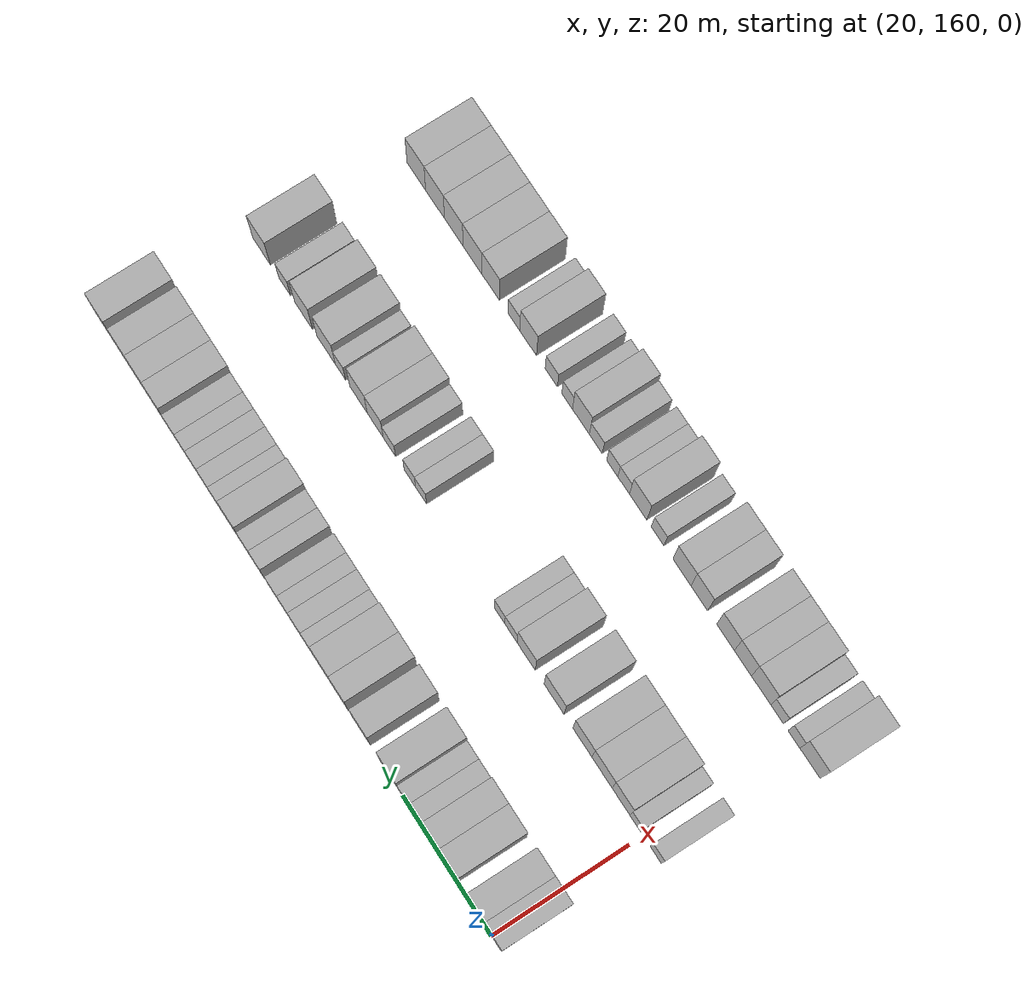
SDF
<sdf version="1.6">
 <world name="default">
  <model name="building_92">
   <static>1</static>
   <pose>25.0000 159.6972 0 0.000000 0.000000 0.000000</pose>
   <link name="link">
    <pose>0 0 4.50 0 0 0</pose>
    <collision name="collision"><geometry><box><size>10.0000 3.8400 9.0000</size></box></geometry></collision>
    <visual name="visual">
     <cast_shadows>0</cast_shadows>
     <geometry><box><size>10.0000 3.8400 9.0000</size></box></geometry>
     <material>
      <script>
       <uri>model://HANNAS_wall/materials/scripts</uri>
       <uri>model://HANNAS_wall/materials/textures</uri>
       <name>vrc/HANNAS_wall</name>
      </script>
     </material>
    </visual>
   </link>
  </model>
  <model name="building_93">
   <static>1</static>
   <pose>25.0000 163.6050 0 0.000000 0.000000 0.000000</pose>
   <link name="link">
    <pose>0 0 4.50 0 0 0</pose>
    <collision name="collision"><geometry><box><size>10.0000 3.9756 9.0000</size></box></geometry></collision>
    <visual name="visual">
     <cast_shadows>0</cast_shadows>
     <geometry><box><size>10.0000 3.9756 9.0000</size></box></geometry>
     <material>
      <script>
       <uri>model://HANNAS_wall/materials/scripts</uri>
       <uri>model://HANNAS_wall/materials/textures</uri>
       <name>vrc/HANNAS_wall</name>
      </script>
     </material>
    </visual>
   </link>
  </model>
  <model name="building_94">
   <static>1</static>
   <pose>25.0000 169.6519 0 0.000000 0.000000 0.000000</pose>
   <link name="link">
    <pose>0 0 4.50 0 0 0</pose>
    <collision name="collision"><geometry><box><size>10.0000 4.1182 9.0000</size></box></geometry></collision>
    <visual name="visual">
     <cast_shadows>0</cast_shadows>
     <geometry><box><size>10.0000 4.1182 9.0000</size></box></geometry>
     <material>
      <script>
       <uri>model://HANNAS_wall/materials/scripts</uri>
       <uri>model://HANNAS_wall/materials/textures</uri>
       <name>vrc/HANNAS_wall</name>
      </script>
     </material>
    </visual>
   </link>
  </model>
  <model name="building_95">
   <static>1</static>
   <pose>25.0000 173.5696 0 0.000000 0.000000 0.000000</pose>
   <link name="link">
    <pose>0 0 4.50 0 0 0</pose>
    <collision name="collision"><geometry><box><size>10.0000 3.7172 9.0000</size></box></geometry></collision>
    <visual name="visual">
     <cast_shadows>0</cast_shadows>
     <geometry><box><size>10.0000 3.7172 9.0000</size></box></geometry>
     <material>
      <script>
       <uri>model://HANNAS_wall/materials/scripts</uri>
       <uri>model://HANNAS_wall/materials/textures</uri>
       <name>vrc/HANNAS_wall</name>
      </script>
     </material>
    </visual>
   </link>
  </model>
  <model name="building_96">
   <static>1</static>
   <pose>25.0000 176.8529 0 0.000000 0.000000 0.000000</pose>
   <link name="link">
    <pose>0 0 3.00 0 0 0</pose>
    <collision name="collision"><geometry><box><size>10.0000 2.8495 6.0000</size></box></geometry></collision>
    <visual name="visual">
     <cast_shadows>0</cast_shadows>
     <geometry><box><size>10.0000 2.8495 6.0000</size></box></geometry>
     <material>
      <script>
       <uri>model://HANNAS_wall/materials/scripts</uri>
       <uri>model://HANNAS_wall/materials/textures</uri>
       <name>vrc/HANNAS_wall</name>
      </script>
     </material>
    </visual>
   </link>
  </model>
  <model name="building_97">
   <static>1</static>
   <pose>25.0000 179.6041 0 0.000000 0.000000 0.000000</pose>
   <link name="link">
    <pose>0 0 3.00 0 0 0</pose>
    <collision name="collision"><geometry><box><size>10.0000 2.6528 6.0000</size></box></geometry></collision>
    <visual name="visual">
     <cast_shadows>0</cast_shadows>
     <geometry><box><size>10.0000 2.6528 6.0000</size></box></geometry>
     <material>
      <script>
       <uri>model://HANNAS_wall/materials/scripts</uri>
       <uri>model://HANNAS_wall/materials/textures</uri>
       <name>vrc/HANNAS_wall</name>
      </script>
     </material>
    </visual>
   </link>
  </model>
  <model name="building_98">
   <static>1</static>
   <pose>25.0000 183.1309 0 0.000000 0.000000 0.000000</pose>
   <link name="link">
    <pose>0 0 4.50 0 0 0</pose>
    <collision name="collision"><geometry><box><size>10.0000 4.4007 9.0000</size></box></geometry></collision>
    <visual name="visual">
     <cast_shadows>0</cast_shadows>
     <geometry><box><size>10.0000 4.4007 9.0000</size></box></geometry>
     <material>
      <script>
       <uri>model://HANNAS_wall/materials/scripts</uri>
       <uri>model://HANNAS_wall/materials/textures</uri>
       <name>vrc/HANNAS_wall</name>
      </script>
     </material>
    </visual>
   </link>
  </model>
  <model name="building_99">
   <static>1</static>
   <pose>25.0000 189.3693 0 0.000000 0.000000 0.000000</pose>
   <link name="link">
    <pose>0 0 4.50 0 0 0</pose>
    <collision name="collision"><geometry><box><size>10.0000 4.0761 9.0000</size></box></geometry></collision>
    <visual name="visual">
     <cast_shadows>0</cast_shadows>
     <geometry><box><size>10.0000 4.0761 9.0000</size></box></geometry>
     <material>
      <script>
       <uri>model://HANNAS_wall/materials/scripts</uri>
       <uri>model://HANNAS_wall/materials/textures</uri>
       <name>vrc/HANNAS_wall</name>
      </script>
     </material>
    </visual>
   </link>
  </model>
  <model name="building_100">
   <static>1</static>
   <pose>25.0000 194.2313 0 0.000000 0.000000 0.000000</pose>
   <link name="link">
    <pose>0 0 4.50 0 0 0</pose>
    <collision name="collision"><geometry><box><size>10.0000 3.6480 9.0000</size></box></geometry></collision>
    <visual name="visual">
     <cast_shadows>0</cast_shadows>
     <geometry><box><size>10.0000 3.6480 9.0000</size></box></geometry>
     <material>
      <script>
       <uri>model://HANNAS_wall/materials/scripts</uri>
       <uri>model://HANNAS_wall/materials/textures</uri>
       <name>vrc/HANNAS_wall</name>
      </script>
     </material>
    </visual>
   </link>
  </model>
  <model name="building_101">
   <static>1</static>
   <pose>25.0000 198.1783 0 0.000000 0.000000 0.000000</pose>
   <link name="link">
    <pose>0 0 4.50 0 0 0</pose>
    <collision name="collision"><geometry><box><size>10.0000 4.2460 9.0000</size></box></geometry></collision>
    <visual name="visual">
     <cast_shadows>0</cast_shadows>
     <geometry><box><size>10.0000 4.2460 9.0000</size></box></geometry>
     <material>
      <script>
       <uri>model://HANNAS_wall/materials/scripts</uri>
       <uri>model://HANNAS_wall/materials/textures</uri>
       <name>vrc/HANNAS_wall</name>
      </script>
     </material>
    </visual>
   </link>
  </model>
  <model name="building_102">
   <static>1</static>
   <pose>25.0000 201.5499 0 0.000000 0.000000 0.000000</pose>
   <link name="link">
    <pose>0 0 3.00 0 0 0</pose>
    <collision name="collision"><geometry><box><size>10.0000 2.4973 6.0000</size></box></geometry></collision>
    <visual name="visual">
     <cast_shadows>0</cast_shadows>
     <geometry><box><size>10.0000 2.4973 6.0000</size></box></geometry>
     <material>
      <script>
       <uri>model://HANNAS_wall/materials/scripts</uri>
       <uri>model://HANNAS_wall/materials/textures</uri>
       <name>vrc/HANNAS_wall</name>
      </script>
     </material>
    </visual>
   </link>
  </model>
  <model name="building_103">
   <static>1</static>
   <pose>25.0000 204.2657 0 0.000000 0.000000 0.000000</pose>
   <link name="link">
    <pose>0 0 3.00 0 0 0</pose>
    <collision name="collision"><geometry><box><size>10.0000 2.9342 6.0000</size></box></geometry></collision>
    <visual name="visual">
     <cast_shadows>0</cast_shadows>
     <geometry><box><size>10.0000 2.9342 6.0000</size></box></geometry>
     <material>
      <script>
       <uri>model://HANNAS_wall/materials/scripts</uri>
       <uri>model://HANNAS_wall/materials/textures</uri>
       <name>vrc/HANNAS_wall</name>
      </script>
     </material>
    </visual>
   </link>
  </model>
  <model name="building_104">
   <static>1</static>
   <pose>25.0000 206.9601 0 0.000000 0.000000 0.000000</pose>
   <link name="link">
    <pose>0 0 3.00 0 0 0</pose>
    <collision name="collision"><geometry><box><size>10.0000 2.4547 6.0000</size></box></geometry></collision>
    <visual name="visual">
     <cast_shadows>0</cast_shadows>
     <geometry><box><size>10.0000 2.4547 6.0000</size></box></geometry>
     <material>
      <script>
       <uri>model://HANNAS_wall/materials/scripts</uri>
       <uri>model://HANNAS_wall/materials/textures</uri>
       <name>vrc/HANNAS_wall</name>
      </script>
     </material>
    </visual>
   </link>
  </model>
  <model name="building_105">
   <static>1</static>
   <pose>25.0000 209.6056 0 0.000000 0.000000 0.000000</pose>
   <link name="link">
    <pose>0 0 3.00 0 0 0</pose>
    <collision name="collision"><geometry><box><size>10.0000 2.8363 6.0000</size></box></geometry></collision>
    <visual name="visual">
     <cast_shadows>0</cast_shadows>
     <geometry><box><size>10.0000 2.8363 6.0000</size></box></geometry>
     <material>
      <script>
       <uri>model://HANNAS_wall/materials/scripts</uri>
       <uri>model://HANNAS_wall/materials/textures</uri>
       <name>vrc/HANNAS_wall</name>
      </script>
     </material>
    </visual>
   </link>
  </model>
  <model name="building_106">
   <static>1</static>
   <pose>25.0000 213.4160 0 0.000000 0.000000 0.000000</pose>
   <link name="link">
    <pose>0 0 3.00 0 0 0</pose>
    <collision name="collision"><geometry><box><size>10.0000 2.7846 6.0000</size></box></geometry></collision>
    <visual name="visual">
     <cast_shadows>0</cast_shadows>
     <geometry><box><size>10.0000 2.7846 6.0000</size></box></geometry>
     <material>
      <script>
       <uri>model://HANNAS_wall/materials/scripts</uri>
       <uri>model://HANNAS_wall/materials/textures</uri>
       <name>vrc/HANNAS_wall</name>
      </script>
     </material>
    </visual>
   </link>
  </model>
  <model name="building_107">
   <static>1</static>
   <pose>25.0000 216.1859 0 0.000000 0.000000 0.000000</pose>
   <link name="link">
    <pose>0 0 3.00 0 0 0</pose>
    <collision name="collision"><geometry><box><size>10.0000 2.7551 6.0000</size></box></geometry></collision>
    <visual name="visual">
     <cast_shadows>0</cast_shadows>
     <geometry><box><size>10.0000 2.7551 6.0000</size></box></geometry>
     <material>
      <script>
       <uri>model://HANNAS_wall/materials/scripts</uri>
       <uri>model://HANNAS_wall/materials/textures</uri>
       <name>vrc/HANNAS_wall</name>
      </script>
     </material>
    </visual>
   </link>
  </model>
  <model name="building_108">
   <static>1</static>
   <pose>25.0000 219.4975 0 0.000000 0.000000 0.000000</pose>
   <link name="link">
    <pose>0 0 4.50 0 0 0</pose>
    <collision name="collision"><geometry><box><size>10.0000 3.8681 9.0000</size></box></geometry></collision>
    <visual name="visual">
     <cast_shadows>0</cast_shadows>
     <geometry><box><size>10.0000 3.8681 9.0000</size></box></geometry>
     <material>
      <script>
       <uri>model://HANNAS_wall/materials/scripts</uri>
       <uri>model://HANNAS_wall/materials/textures</uri>
       <name>vrc/HANNAS_wall</name>
      </script>
     </material>
    </visual>
   </link>
  </model>
  <model name="building_109">
   <static>1</static>
   <pose>25.0000 222.8464 0 0.000000 0.000000 0.000000</pose>
   <link name="link">
    <pose>0 0 3.00 0 0 0</pose>
    <collision name="collision"><geometry><box><size>10.0000 2.8297 6.0000</size></box></geometry></collision>
    <visual name="visual">
     <cast_shadows>0</cast_shadows>
     <geometry><box><size>10.0000 2.8297 6.0000</size></box></geometry>
     <material>
      <script>
       <uri>model://HANNAS_wall/materials/scripts</uri>
       <uri>model://HANNAS_wall/materials/textures</uri>
       <name>vrc/HANNAS_wall</name>
      </script>
     </material>
    </visual>
   </link>
  </model>
  <model name="building_110">
   <static>1</static>
   <pose>25.0000 225.6006 0 0.000000 0.000000 0.000000</pose>
   <link name="link">
    <pose>0 0 3.00 0 0 0</pose>
    <collision name="collision"><geometry><box><size>10.0000 2.6788 6.0000</size></box></geometry></collision>
    <visual name="visual">
     <cast_shadows>0</cast_shadows>
     <geometry><box><size>10.0000 2.6788 6.0000</size></box></geometry>
     <material>
      <script>
       <uri>model://HANNAS_wall/materials/scripts</uri>
       <uri>model://HANNAS_wall/materials/textures</uri>
       <name>vrc/HANNAS_wall</name>
      </script>
     </material>
    </visual>
   </link>
  </model>
  <model name="building_111">
   <static>1</static>
   <pose>25.0000 228.2930 0 0.000000 0.000000 0.000000</pose>
   <link name="link">
    <pose>0 0 3.00 0 0 0</pose>
    <collision name="collision"><geometry><box><size>10.0000 2.7061 6.0000</size></box></geometry></collision>
    <visual name="visual">
     <cast_shadows>0</cast_shadows>
     <geometry><box><size>10.0000 2.7061 6.0000</size></box></geometry>
     <material>
      <script>
       <uri>model://HANNAS_wall/materials/scripts</uri>
       <uri>model://HANNAS_wall/materials/textures</uri>
       <name>vrc/HANNAS_wall</name>
      </script>
     </material>
    </visual>
   </link>
  </model>
  <model name="building_112">
   <static>1</static>
   <pose>25.0000 230.8920 0 0.000000 0.000000 0.000000</pose>
   <link name="link">
    <pose>0 0 3.00 0 0 0</pose>
    <collision name="collision"><geometry><box><size>10.0000 2.4918 6.0000</size></box></geometry></collision>
    <visual name="visual">
     <cast_shadows>0</cast_shadows>
     <geometry><box><size>10.0000 2.4918 6.0000</size></box></geometry>
     <material>
      <script>
       <uri>model://HANNAS_wall/materials/scripts</uri>
       <uri>model://HANNAS_wall/materials/textures</uri>
       <name>vrc/HANNAS_wall</name>
      </script>
     </material>
    </visual>
   </link>
  </model>
  <model name="building_113">
   <static>1</static>
   <pose>25.0000 233.6374 0 0.000000 0.000000 0.000000</pose>
   <link name="link">
    <pose>0 0 3.00 0 0 0</pose>
    <collision name="collision"><geometry><box><size>10.0000 2.9990 6.0000</size></box></geometry></collision>
    <visual name="visual">
     <cast_shadows>0</cast_shadows>
     <geometry><box><size>10.0000 2.9990 6.0000</size></box></geometry>
     <material>
      <script>
       <uri>model://HANNAS_wall/materials/scripts</uri>
       <uri>model://HANNAS_wall/materials/textures</uri>
       <name>vrc/HANNAS_wall</name>
      </script>
     </material>
    </visual>
   </link>
  </model>
  <model name="building_114">
   <static>1</static>
   <pose>25.0000 237.1135 0 0.000000 0.000000 0.000000</pose>
   <link name="link">
    <pose>0 0 4.50 0 0 0</pose>
    <collision name="collision"><geometry><box><size>10.0000 3.9532 9.0000</size></box></geometry></collision>
    <visual name="visual">
     <cast_shadows>0</cast_shadows>
     <geometry><box><size>10.0000 3.9532 9.0000</size></box></geometry>
     <material>
      <script>
       <uri>model://HANNAS_wall/materials/scripts</uri>
       <uri>model://HANNAS_wall/materials/textures</uri>
       <name>vrc/HANNAS_wall</name>
      </script>
     </material>
    </visual>
   </link>
  </model>
  <model name="building_115">
   <static>1</static>
   <pose>25.0000 241.1163 0 0.000000 0.000000 0.000000</pose>
   <link name="link">
    <pose>0 0 4.50 0 0 0</pose>
    <collision name="collision"><geometry><box><size>10.0000 4.0525 9.0000</size></box></geometry></collision>
    <visual name="visual">
     <cast_shadows>0</cast_shadows>
     <geometry><box><size>10.0000 4.0525 9.0000</size></box></geometry>
     <material>
      <script>
       <uri>model://HANNAS_wall/materials/scripts</uri>
       <uri>model://HANNAS_wall/materials/textures</uri>
       <name>vrc/HANNAS_wall</name>
      </script>
     </material>
    </visual>
   </link>
  </model>
  <model name="building_116">
   <static>1</static>
   <pose>25.0000 245.1663 0 0.000000 0.000000 0.000000</pose>
   <link name="link">
    <pose>0 0 4.50 0 0 0</pose>
    <collision name="collision"><geometry><box><size>10.0000 4.0475 9.0000</size></box></geometry></collision>
    <visual name="visual">
     <cast_shadows>0</cast_shadows>
     <geometry><box><size>10.0000 4.0475 9.0000</size></box></geometry>
     <material>
      <script>
       <uri>model://HANNAS_wall/materials/scripts</uri>
       <uri>model://HANNAS_wall/materials/textures</uri>
       <name>vrc/HANNAS_wall</name>
      </script>
     </material>
    </visual>
   </link>
  </model>
  <model name="building_117">
   <static>1</static>
   <pose>25.0000 250.3710 0 0.000000 0.000000 0.000000</pose>
   <link name="link">
    <pose>0 0 4.50 0 0 0</pose>
    <collision name="collision"><geometry><box><size>10.0000 4.3619 9.0000</size></box></geometry></collision>
    <visual name="visual">
     <cast_shadows>0</cast_shadows>
     <geometry><box><size>10.0000 4.3619 9.0000</size></box></geometry>
     <material>
      <script>
       <uri>model://HANNAS_wall/materials/scripts</uri>
       <uri>model://HANNAS_wall/materials/textures</uri>
       <name>vrc/HANNAS_wall</name>
      </script>
     </material>
    </visual>
   </link>
  </model>
  <model name="building_206">
   <static>1</static>
   <pose>47.0000 157.3305 0 0.000000 0.000000 0.000000</pose>
   <link name="link">
    <pose>0 0 3.00 0 0 0</pose>
    <collision name="collision"><geometry><box><size>10.0000 2.5042 6.0000</size></box></geometry></collision>
    <visual name="visual">
     <cast_shadows>0</cast_shadows>
     <geometry><box><size>10.0000 2.5042 6.0000</size></box></geometry>
     <material>
      <script>
       <uri>model://HANNAS_wall/materials/scripts</uri>
       <uri>model://HANNAS_wall/materials/textures</uri>
       <name>vrc/HANNAS_wall</name>
      </script>
     </material>
    </visual>
   </link>
  </model>
  <model name="building_207">
   <static>1</static>
   <pose>47.0000 161.7939 0 0.000000 0.000000 0.000000</pose>
   <link name="link">
    <pose>0 0 3.00 0 0 0</pose>
    <collision name="collision"><geometry><box><size>10.0000 2.4228 6.0000</size></box></geometry></collision>
    <visual name="visual">
     <cast_shadows>0</cast_shadows>
     <geometry><box><size>10.0000 2.4228 6.0000</size></box></geometry>
     <material>
      <script>
       <uri>model://HANNAS_wall/materials/scripts</uri>
       <uri>model://HANNAS_wall/materials/textures</uri>
       <name>vrc/HANNAS_wall</name>
      </script>
     </material>
    </visual>
   </link>
  </model>
  <model name="building_208">
   <static>1</static>
   <pose>47.0000 164.9672 0 0.000000 0.000000 0.000000</pose>
   <link name="link">
    <pose>0 0 4.50 0 0 0</pose>
    <collision name="collision"><geometry><box><size>10.0000 3.9237 9.0000</size></box></geometry></collision>
    <visual name="visual">
     <cast_shadows>0</cast_shadows>
     <geometry><box><size>10.0000 3.9237 9.0000</size></box></geometry>
     <material>
      <script>
       <uri>model://HANNAS_wall/materials/scripts</uri>
       <uri>model://HANNAS_wall/materials/textures</uri>
       <name>vrc/HANNAS_wall</name>
      </script>
     </material>
    </visual>
   </link>
  </model>
  <model name="building_209">
   <static>1</static>
   <pose>47.0000 169.1634 0 0.000000 0.000000 0.000000</pose>
   <link name="link">
    <pose>0 0 4.50 0 0 0</pose>
    <collision name="collision"><geometry><box><size>10.0000 4.4689 9.0000</size></box></geometry></collision>
    <visual name="visual">
     <cast_shadows>0</cast_shadows>
     <geometry><box><size>10.0000 4.4689 9.0000</size></box></geometry>
     <material>
      <script>
       <uri>model://HANNAS_wall/materials/scripts</uri>
       <uri>model://HANNAS_wall/materials/textures</uri>
       <name>vrc/HANNAS_wall</name>
      </script>
     </material>
    </visual>
   </link>
  </model>
  <model name="building_210">
   <static>1</static>
   <pose>47.0000 173.5225 0 0.000000 0.000000 0.000000</pose>
   <link name="link">
    <pose>0 0 4.50 0 0 0</pose>
    <collision name="collision"><geometry><box><size>10.0000 4.2493 9.0000</size></box></geometry></collision>
    <visual name="visual">
     <cast_shadows>0</cast_shadows>
     <geometry><box><size>10.0000 4.2493 9.0000</size></box></geometry>
     <material>
      <script>
       <uri>model://HANNAS_wall/materials/scripts</uri>
       <uri>model://HANNAS_wall/materials/textures</uri>
       <name>vrc/HANNAS_wall</name>
      </script>
     </material>
    </visual>
   </link>
  </model>
  <model name="building_211">
   <static>1</static>
   <pose>47.0000 179.8951 0 0.000000 0.000000 0.000000</pose>
   <link name="link">
    <pose>0 0 4.50 0 0 0</pose>
    <collision name="collision"><geometry><box><size>10.0000 4.4960 9.0000</size></box></geometry></collision>
    <visual name="visual">
     <cast_shadows>0</cast_shadows>
     <geometry><box><size>10.0000 4.4960 9.0000</size></box></geometry>
     <material>
      <script>
       <uri>model://HANNAS_wall/materials/scripts</uri>
       <uri>model://HANNAS_wall/materials/textures</uri>
       <name>vrc/HANNAS_wall</name>
      </script>
     </material>
    </visual>
   </link>
  </model>
  <model name="building_212">
   <static>1</static>
   <pose>47.0000 186.1924 0 0.000000 0.000000 0.000000</pose>
   <link name="link">
    <pose>0 0 4.50 0 0 0</pose>
    <collision name="collision"><geometry><box><size>10.0000 4.0985 9.0000</size></box></geometry></collision>
    <visual name="visual">
     <cast_shadows>0</cast_shadows>
     <geometry><box><size>10.0000 4.0985 9.0000</size></box></geometry>
     <material>
      <script>
       <uri>model://HANNAS_wall/materials/scripts</uri>
       <uri>model://HANNAS_wall/materials/textures</uri>
       <name>vrc/HANNAS_wall</name>
      </script>
     </material>
    </visual>
   </link>
  </model>
  <model name="building_213">
   <static>1</static>
   <pose>47.0000 189.6324 0 0.000000 0.000000 0.000000</pose>
   <link name="link">
    <pose>0 0 3.00 0 0 0</pose>
    <collision name="collision"><geometry><box><size>10.0000 2.7817 6.0000</size></box></geometry></collision>
    <visual name="visual">
     <cast_shadows>0</cast_shadows>
     <geometry><box><size>10.0000 2.7817 6.0000</size></box></geometry>
     <material>
      <script>
       <uri>model://HANNAS_wall/materials/scripts</uri>
       <uri>model://HANNAS_wall/materials/textures</uri>
       <name>vrc/HANNAS_wall</name>
      </script>
     </material>
    </visual>
   </link>
  </model>
  <model name="building_214">
   <static>1</static>
   <pose>47.0000 192.2493 0 0.000000 0.000000 0.000000</pose>
   <link name="link">
    <pose>0 0 3.00 0 0 0</pose>
    <collision name="collision"><geometry><box><size>10.0000 2.4520 6.0000</size></box></geometry></collision>
    <visual name="visual">
     <cast_shadows>0</cast_shadows>
     <geometry><box><size>10.0000 2.4520 6.0000</size></box></geometry>
     <material>
      <script>
       <uri>model://HANNAS_wall/materials/scripts</uri>
       <uri>model://HANNAS_wall/materials/textures</uri>
       <name>vrc/HANNAS_wall</name>
      </script>
     </material>
    </visual>
   </link>
  </model>
  <model name="building_215">
   <static>1</static>
   <pose>47.0000 210.3008 0 0.000000 0.000000 0.000000</pose>
   <link name="link">
    <pose>0 0 3.00 0 0 0</pose>
    <collision name="collision"><geometry><box><size>10.0000 2.5504 6.0000</size></box></geometry></collision>
    <visual name="visual">
     <cast_shadows>0</cast_shadows>
     <geometry><box><size>10.0000 2.5504 6.0000</size></box></geometry>
     <material>
      <script>
       <uri>model://HANNAS_wall/materials/scripts</uri>
       <uri>model://HANNAS_wall/materials/textures</uri>
       <name>vrc/HANNAS_wall</name>
      </script>
     </material>
    </visual>
   </link>
  </model>
  <model name="building_216">
   <static>1</static>
   <pose>47.0000 212.9019 0 0.000000 0.000000 0.000000</pose>
   <link name="link">
    <pose>0 0 3.00 0 0 0</pose>
    <collision name="collision"><geometry><box><size>10.0000 2.6519 6.0000</size></box></geometry></collision>
    <visual name="visual">
     <cast_shadows>0</cast_shadows>
     <geometry><box><size>10.0000 2.6519 6.0000</size></box></geometry>
     <material>
      <script>
       <uri>model://HANNAS_wall/materials/scripts</uri>
       <uri>model://HANNAS_wall/materials/textures</uri>
       <name>vrc/HANNAS_wall</name>
      </script>
     </material>
    </visual>
   </link>
  </model>
  <model name="building_217">
   <static>1</static>
   <pose>47.0000 217.6690 0 0.000000 0.000000 0.000000</pose>
   <link name="link">
    <pose>0 0 3.00 0 0 0</pose>
    <collision name="collision"><geometry><box><size>10.0000 2.8822 6.0000</size></box></geometry></collision>
    <visual name="visual">
     <cast_shadows>0</cast_shadows>
     <geometry><box><size>10.0000 2.8822 6.0000</size></box></geometry>
     <material>
      <script>
       <uri>model://HANNAS_wall/materials/scripts</uri>
       <uri>model://HANNAS_wall/materials/textures</uri>
       <name>vrc/HANNAS_wall</name>
      </script>
     </material>
    </visual>
   </link>
  </model>
  <model name="building_218">
   <static>1</static>
   <pose>47.0000 220.9915 0 0.000000 0.000000 0.000000</pose>
   <link name="link">
    <pose>0 0 4.50 0 0 0</pose>
    <collision name="collision"><geometry><box><size>10.0000 3.7628 9.0000</size></box></geometry></collision>
    <visual name="visual">
     <cast_shadows>0</cast_shadows>
     <geometry><box><size>10.0000 3.7628 9.0000</size></box></geometry>
     <material>
      <script>
       <uri>model://HANNAS_wall/materials/scripts</uri>
       <uri>model://HANNAS_wall/materials/textures</uri>
       <name>vrc/HANNAS_wall</name>
      </script>
     </material>
    </visual>
   </link>
  </model>
  <model name="building_219">
   <static>1</static>
   <pose>47.0000 224.9384 0 0.000000 0.000000 0.000000</pose>
   <link name="link">
    <pose>0 0 4.50 0 0 0</pose>
    <collision name="collision"><geometry><box><size>10.0000 4.1309 9.0000</size></box></geometry></collision>
    <visual name="visual">
     <cast_shadows>0</cast_shadows>
     <geometry><box><size>10.0000 4.1309 9.0000</size></box></geometry>
     <material>
      <script>
       <uri>model://HANNAS_wall/materials/scripts</uri>
       <uri>model://HANNAS_wall/materials/textures</uri>
       <name>vrc/HANNAS_wall</name>
      </script>
     </material>
    </visual>
   </link>
  </model>
  <model name="building_220">
   <static>1</static>
   <pose>47.0000 229.2308 0 0.000000 0.000000 0.000000</pose>
   <link name="link">
    <pose>0 0 3.00 0 0 0</pose>
    <collision name="collision"><geometry><box><size>10.0000 2.4540 6.0000</size></box></geometry></collision>
    <visual name="visual">
     <cast_shadows>0</cast_shadows>
     <geometry><box><size>10.0000 2.4540 6.0000</size></box></geometry>
     <material>
      <script>
       <uri>model://HANNAS_wall/materials/scripts</uri>
       <uri>model://HANNAS_wall/materials/textures</uri>
       <name>vrc/HANNAS_wall</name>
      </script>
     </material>
    </visual>
   </link>
  </model>
  <model name="building_221">
   <static>1</static>
   <pose>47.0000 232.6651 0 0.000000 0.000000 0.000000</pose>
   <link name="link">
    <pose>0 0 4.50 0 0 0</pose>
    <collision name="collision"><geometry><box><size>10.0000 4.4146 9.0000</size></box></geometry></collision>
    <visual name="visual">
     <cast_shadows>0</cast_shadows>
     <geometry><box><size>10.0000 4.4146 9.0000</size></box></geometry>
     <material>
      <script>
       <uri>model://HANNAS_wall/materials/scripts</uri>
       <uri>model://HANNAS_wall/materials/textures</uri>
       <name>vrc/HANNAS_wall</name>
      </script>
     </material>
    </visual>
   </link>
  </model>
  <model name="building_222">
   <static>1</static>
   <pose>47.0000 238.0241 0 0.000000 0.000000 0.000000</pose>
   <link name="link">
    <pose>0 0 4.50 0 0 0</pose>
    <collision name="collision"><geometry><box><size>10.0000 4.3033 9.0000</size></box></geometry></collision>
    <visual name="visual">
     <cast_shadows>0</cast_shadows>
     <geometry><box><size>10.0000 4.3033 9.0000</size></box></geometry>
     <material>
      <script>
       <uri>model://HANNAS_wall/materials/scripts</uri>
       <uri>model://HANNAS_wall/materials/textures</uri>
       <name>vrc/HANNAS_wall</name>
      </script>
     </material>
    </visual>
   </link>
  </model>
  <model name="building_223">
   <static>1</static>
   <pose>47.0000 242.6001 0 0.000000 0.000000 0.000000</pose>
   <link name="link">
    <pose>0 0 3.00 0 0 0</pose>
    <collision name="collision"><geometry><box><size>10.0000 2.8487 6.0000</size></box></geometry></collision>
    <visual name="visual">
     <cast_shadows>0</cast_shadows>
     <geometry><box><size>10.0000 2.8487 6.0000</size></box></geometry>
     <material>
      <script>
       <uri>model://HANNAS_wall/materials/scripts</uri>
       <uri>model://HANNAS_wall/materials/textures</uri>
       <name>vrc/HANNAS_wall</name>
      </script>
     </material>
    </visual>
   </link>
  </model>
  <model name="building_224">
   <static>1</static>
   <pose>47.0000 248.1379 0 0.000000 0.000000 0.000000</pose>
   <link name="link">
    <pose>0 0 4.50 0 0 0</pose>
    <collision name="collision"><geometry><box><size>10.0000 4.2270 9.0000</size></box></geometry></collision>
    <visual name="visual">
     <cast_shadows>0</cast_shadows>
     <geometry><box><size>10.0000 4.2270 9.0000</size></box></geometry>
     <material>
      <script>
       <uri>model://HANNAS_wall/materials/scripts</uri>
       <uri>model://HANNAS_wall/materials/textures</uri>
       <name>vrc/HANNAS_wall</name>
      </script>
     </material>
    </visual>
   </link>
  </model>
  <model name="building_316">
   <static>1</static>
   <pose>69.0000 156.3381 0 0.000000 0.000000 0.000000</pose>
   <link name="link">
    <pose>0 0 4.50 0 0 0</pose>
    <collision name="collision"><geometry><box><size>10.0000 4.3940 9.0000</size></box></geometry></collision>
    <visual name="visual">
     <cast_shadows>0</cast_shadows>
     <geometry><box><size>10.0000 4.3940 9.0000</size></box></geometry>
     <material>
      <script>
       <uri>model://HANNAS_wall/materials/scripts</uri>
       <uri>model://HANNAS_wall/materials/textures</uri>
       <name>vrc/HANNAS_wall</name>
      </script>
     </material>
    </visual>
   </link>
  </model>
  <model name="building_317">
   <static>1</static>
   <pose>69.0000 159.8183 0 0.000000 0.000000 0.000000</pose>
   <link name="link">
    <pose>0 0 3.00 0 0 0</pose>
    <collision name="collision"><geometry><box><size>10.0000 2.5664 6.0000</size></box></geometry></collision>
    <visual name="visual">
     <cast_shadows>0</cast_shadows>
     <geometry><box><size>10.0000 2.5664 6.0000</size></box></geometry>
     <material>
      <script>
       <uri>model://HANNAS_wall/materials/scripts</uri>
       <uri>model://HANNAS_wall/materials/textures</uri>
       <name>vrc/HANNAS_wall</name>
      </script>
     </material>
    </visual>
   </link>
  </model>
  <model name="building_318">
   <static>1</static>
   <pose>69.0000 163.4926 0 0.000000 0.000000 0.000000</pose>
   <link name="link">
    <pose>0 0 3.00 0 0 0</pose>
    <collision name="collision"><geometry><box><size>10.0000 2.7822 6.0000</size></box></geometry></collision>
    <visual name="visual">
     <cast_shadows>0</cast_shadows>
     <geometry><box><size>10.0000 2.7822 6.0000</size></box></geometry>
     <material>
      <script>
       <uri>model://HANNAS_wall/materials/scripts</uri>
       <uri>model://HANNAS_wall/materials/textures</uri>
       <name>vrc/HANNAS_wall</name>
      </script>
     </material>
    </visual>
   </link>
  </model>
  <model name="building_319">
   <static>1</static>
   <pose>69.0000 167.0042 0 0.000000 0.000000 0.000000</pose>
   <link name="link">
    <pose>0 0 4.50 0 0 0</pose>
    <collision name="collision"><geometry><box><size>10.0000 4.2410 9.0000</size></box></geometry></collision>
    <visual name="visual">
     <cast_shadows>0</cast_shadows>
     <geometry><box><size>10.0000 4.2410 9.0000</size></box></geometry>
     <material>
      <script>
       <uri>model://HANNAS_wall/materials/scripts</uri>
       <uri>model://HANNAS_wall/materials/textures</uri>
       <name>vrc/HANNAS_wall</name>
      </script>
     </material>
    </visual>
   </link>
  </model>
  <model name="building_320">
   <static>1</static>
   <pose>69.0000 170.9947 0 0.000000 0.000000 0.000000</pose>
   <link name="link">
    <pose>0 0 4.50 0 0 0</pose>
    <collision name="collision"><geometry><box><size>10.0000 3.7400 9.0000</size></box></geometry></collision>
    <visual name="visual">
     <cast_shadows>0</cast_shadows>
     <geometry><box><size>10.0000 3.7400 9.0000</size></box></geometry>
     <material>
      <script>
       <uri>model://HANNAS_wall/materials/scripts</uri>
       <uri>model://HANNAS_wall/materials/textures</uri>
       <name>vrc/HANNAS_wall</name>
      </script>
     </material>
    </visual>
   </link>
  </model>
  <model name="building_321">
   <static>1</static>
   <pose>69.0000 174.8204 0 0.000000 0.000000 0.000000</pose>
   <link name="link">
    <pose>0 0 4.50 0 0 0</pose>
    <collision name="collision"><geometry><box><size>10.0000 3.9113 9.0000</size></box></geometry></collision>
    <visual name="visual">
     <cast_shadows>0</cast_shadows>
     <geometry><box><size>10.0000 3.9113 9.0000</size></box></geometry>
     <material>
      <script>
       <uri>model://HANNAS_wall/materials/scripts</uri>
       <uri>model://HANNAS_wall/materials/textures</uri>
       <name>vrc/HANNAS_wall</name>
      </script>
     </material>
    </visual>
   </link>
  </model>
  <model name="building_322">
   <static>1</static>
   <pose>69.0000 180.6321 0 0.000000 0.000000 0.000000</pose>
   <link name="link">
    <pose>0 0 4.50 0 0 0</pose>
    <collision name="collision"><geometry><box><size>10.0000 3.7123 9.0000</size></box></geometry></collision>
    <visual name="visual">
     <cast_shadows>0</cast_shadows>
     <geometry><box><size>10.0000 3.7123 9.0000</size></box></geometry>
     <material>
      <script>
       <uri>model://HANNAS_wall/materials/scripts</uri>
       <uri>model://HANNAS_wall/materials/textures</uri>
       <name>vrc/HANNAS_wall</name>
      </script>
     </material>
    </visual>
   </link>
  </model>
  <model name="building_323">
   <static>1</static>
   <pose>69.0000 184.5063 0 0.000000 0.000000 0.000000</pose>
   <link name="link">
    <pose>0 0 4.50 0 0 0</pose>
    <collision name="collision"><geometry><box><size>10.0000 4.0360 9.0000</size></box></geometry></collision>
    <visual name="visual">
     <cast_shadows>0</cast_shadows>
     <geometry><box><size>10.0000 4.0360 9.0000</size></box></geometry>
     <material>
      <script>
       <uri>model://HANNAS_wall/materials/scripts</uri>
       <uri>model://HANNAS_wall/materials/textures</uri>
       <name>vrc/HANNAS_wall</name>
      </script>
     </material>
    </visual>
   </link>
  </model>
  <model name="building_324">
   <static>1</static>
   <pose>69.0000 189.9577 0 0.000000 0.000000 0.000000</pose>
   <link name="link">
    <pose>0 0 3.00 0 0 0</pose>
    <collision name="collision"><geometry><box><size>10.0000 2.8669 6.0000</size></box></geometry></collision>
    <visual name="visual">
     <cast_shadows>0</cast_shadows>
     <geometry><box><size>10.0000 2.8669 6.0000</size></box></geometry>
     <material>
      <script>
       <uri>model://HANNAS_wall/materials/scripts</uri>
       <uri>model://HANNAS_wall/materials/textures</uri>
       <name>vrc/HANNAS_wall</name>
      </script>
     </material>
    </visual>
   </link>
  </model>
  <model name="building_325">
   <static>1</static>
   <pose>69.0000 194.3569 0 0.000000 0.000000 0.000000</pose>
   <link name="link">
    <pose>0 0 4.50 0 0 0</pose>
    <collision name="collision"><geometry><box><size>10.0000 3.9314 9.0000</size></box></geometry></collision>
    <visual name="visual">
     <cast_shadows>0</cast_shadows>
     <geometry><box><size>10.0000 3.9314 9.0000</size></box></geometry>
     <material>
      <script>
       <uri>model://HANNAS_wall/materials/scripts</uri>
       <uri>model://HANNAS_wall/materials/textures</uri>
       <name>vrc/HANNAS_wall</name>
      </script>
     </material>
    </visual>
   </link>
  </model>
  <model name="building_326">
   <static>1</static>
   <pose>69.0000 197.6402 0 0.000000 0.000000 0.000000</pose>
   <link name="link">
    <pose>0 0 3.00 0 0 0</pose>
    <collision name="collision"><geometry><box><size>10.0000 2.6352 6.0000</size></box></geometry></collision>
    <visual name="visual">
     <cast_shadows>0</cast_shadows>
     <geometry><box><size>10.0000 2.6352 6.0000</size></box></geometry>
     <material>
      <script>
       <uri>model://HANNAS_wall/materials/scripts</uri>
       <uri>model://HANNAS_wall/materials/textures</uri>
       <name>vrc/HANNAS_wall</name>
      </script>
     </material>
    </visual>
   </link>
  </model>
  <model name="building_327">
   <static>1</static>
   <pose>69.0000 200.2323 0 0.000000 0.000000 0.000000</pose>
   <link name="link">
    <pose>0 0 3.00 0 0 0</pose>
    <collision name="collision"><geometry><box><size>10.0000 2.5488 6.0000</size></box></geometry></collision>
    <visual name="visual">
     <cast_shadows>0</cast_shadows>
     <geometry><box><size>10.0000 2.5488 6.0000</size></box></geometry>
     <material>
      <script>
       <uri>model://HANNAS_wall/materials/scripts</uri>
       <uri>model://HANNAS_wall/materials/textures</uri>
       <name>vrc/HANNAS_wall</name>
      </script>
     </material>
    </visual>
   </link>
  </model>
  <model name="building_328">
   <static>1</static>
   <pose>69.0000 203.9838 0 0.000000 0.000000 0.000000</pose>
   <link name="link">
    <pose>0 0 3.00 0 0 0</pose>
    <collision name="collision"><geometry><box><size>10.0000 2.9543 6.0000</size></box></geometry></collision>
    <visual name="visual">
     <cast_shadows>0</cast_shadows>
     <geometry><box><size>10.0000 2.9543 6.0000</size></box></geometry>
     <material>
      <script>
       <uri>model://HANNAS_wall/materials/scripts</uri>
       <uri>model://HANNAS_wall/materials/textures</uri>
       <name>vrc/HANNAS_wall</name>
      </script>
     </material>
    </visual>
   </link>
  </model>
  <model name="building_329">
   <static>1</static>
   <pose>69.0000 207.3968 0 0.000000 0.000000 0.000000</pose>
   <link name="link">
    <pose>0 0 4.50 0 0 0</pose>
    <collision name="collision"><geometry><box><size>10.0000 3.8716 9.0000</size></box></geometry></collision>
    <visual name="visual">
     <cast_shadows>0</cast_shadows>
     <geometry><box><size>10.0000 3.8716 9.0000</size></box></geometry>
     <material>
      <script>
       <uri>model://HANNAS_wall/materials/scripts</uri>
       <uri>model://HANNAS_wall/materials/textures</uri>
       <name>vrc/HANNAS_wall</name>
      </script>
     </material>
    </visual>
   </link>
  </model>
  <model name="building_330">
   <static>1</static>
   <pose>69.0000 210.5596 0 0.000000 0.000000 0.000000</pose>
   <link name="link">
    <pose>0 0 3.00 0 0 0</pose>
    <collision name="collision"><geometry><box><size>10.0000 2.4540 6.0000</size></box></geometry></collision>
    <visual name="visual">
     <cast_shadows>0</cast_shadows>
     <geometry><box><size>10.0000 2.4540 6.0000</size></box></geometry>
     <material>
      <script>
       <uri>model://HANNAS_wall/materials/scripts</uri>
       <uri>model://HANNAS_wall/materials/textures</uri>
       <name>vrc/HANNAS_wall</name>
      </script>
     </material>
    </visual>
   </link>
  </model>
  <model name="building_331">
   <static>1</static>
   <pose>69.0000 214.2117 0 0.000000 0.000000 0.000000</pose>
   <link name="link">
    <pose>0 0 3.00 0 0 0</pose>
    <collision name="collision"><geometry><box><size>10.0000 2.8502 6.0000</size></box></geometry></collision>
    <visual name="visual">
     <cast_shadows>0</cast_shadows>
     <geometry><box><size>10.0000 2.8502 6.0000</size></box></geometry>
     <material>
      <script>
       <uri>model://HANNAS_wall/materials/scripts</uri>
       <uri>model://HANNAS_wall/materials/textures</uri>
       <name>vrc/HANNAS_wall</name>
      </script>
     </material>
    </visual>
   </link>
  </model>
  <model name="building_332">
   <static>1</static>
   <pose>69.0000 219.5909 0 0.000000 0.000000 0.000000</pose>
   <link name="link">
    <pose>0 0 4.50 0 0 0</pose>
    <collision name="collision"><geometry><box><size>10.0000 3.9081 9.0000</size></box></geometry></collision>
    <visual name="visual">
     <cast_shadows>0</cast_shadows>
     <geometry><box><size>10.0000 3.9081 9.0000</size></box></geometry>
     <material>
      <script>
       <uri>model://HANNAS_wall/materials/scripts</uri>
       <uri>model://HANNAS_wall/materials/textures</uri>
       <name>vrc/HANNAS_wall</name>
      </script>
     </material>
    </visual>
   </link>
  </model>
  <model name="building_333">
   <static>1</static>
   <pose>69.0000 222.9142 0 0.000000 0.000000 0.000000</pose>
   <link name="link">
    <pose>0 0 3.00 0 0 0</pose>
    <collision name="collision"><geometry><box><size>10.0000 2.7387 6.0000</size></box></geometry></collision>
    <visual name="visual">
     <cast_shadows>0</cast_shadows>
     <geometry><box><size>10.0000 2.7387 6.0000</size></box></geometry>
     <material>
      <script>
       <uri>model://HANNAS_wall/materials/scripts</uri>
       <uri>model://HANNAS_wall/materials/textures</uri>
       <name>vrc/HANNAS_wall</name>
      </script>
     </material>
    </visual>
   </link>
  </model>
  <model name="building_334">
   <static>1</static>
   <pose>69.0000 228.3152 0 0.000000 0.000000 0.000000</pose>
   <link name="link">
    <pose>0 0 4.50 0 0 0</pose>
    <collision name="collision"><geometry><box><size>10.0000 4.0632 9.0000</size></box></geometry></collision>
    <visual name="visual">
     <cast_shadows>0</cast_shadows>
     <geometry><box><size>10.0000 4.0632 9.0000</size></box></geometry>
     <material>
      <script>
       <uri>model://HANNAS_wall/materials/scripts</uri>
       <uri>model://HANNAS_wall/materials/textures</uri>
       <name>vrc/HANNAS_wall</name>
      </script>
     </material>
    </visual>
   </link>
  </model>
  <model name="building_335">
   <static>1</static>
   <pose>69.0000 232.5884 0 0.000000 0.000000 0.000000</pose>
   <link name="link">
    <pose>0 0 4.50 0 0 0</pose>
    <collision name="collision"><geometry><box><size>10.0000 4.4833 9.0000</size></box></geometry></collision>
    <visual name="visual">
     <cast_shadows>0</cast_shadows>
     <geometry><box><size>10.0000 4.4833 9.0000</size></box></geometry>
     <material>
      <script>
       <uri>model://HANNAS_wall/materials/scripts</uri>
       <uri>model://HANNAS_wall/materials/textures</uri>
       <name>vrc/HANNAS_wall</name>
      </script>
     </material>
    </visual>
   </link>
  </model>
  <model name="building_336">
   <static>1</static>
   <pose>69.0000 237.0324 0 0.000000 0.000000 0.000000</pose>
   <link name="link">
    <pose>0 0 4.50 0 0 0</pose>
    <collision name="collision"><geometry><box><size>10.0000 4.4048 9.0000</size></box></geometry></collision>
    <visual name="visual">
     <cast_shadows>0</cast_shadows>
     <geometry><box><size>10.0000 4.4048 9.0000</size></box></geometry>
     <material>
      <script>
       <uri>model://HANNAS_wall/materials/scripts</uri>
       <uri>model://HANNAS_wall/materials/textures</uri>
       <name>vrc/HANNAS_wall</name>
      </script>
     </material>
    </visual>
   </link>
  </model>
  <model name="building_337">
   <static>1</static>
   <pose>69.0000 241.4683 0 0.000000 0.000000 0.000000</pose>
   <link name="link">
    <pose>0 0 4.50 0 0 0</pose>
    <collision name="collision"><geometry><box><size>10.0000 4.4668 9.0000</size></box></geometry></collision>
    <visual name="visual">
     <cast_shadows>0</cast_shadows>
     <geometry><box><size>10.0000 4.4668 9.0000</size></box></geometry>
     <material>
      <script>
       <uri>model://HANNAS_wall/materials/scripts</uri>
       <uri>model://HANNAS_wall/materials/textures</uri>
       <name>vrc/HANNAS_wall</name>
      </script>
     </material>
    </visual>
   </link>
  </model>
  <model name="building_338">
   <static>1</static>
   <pose>69.0000 245.9219 0 0.000000 0.000000 0.000000</pose>
   <link name="link">
    <pose>0 0 4.50 0 0 0</pose>
    <collision name="collision"><geometry><box><size>10.0000 4.4403 9.0000</size></box></geometry></collision>
    <visual name="visual">
     <cast_shadows>0</cast_shadows>
     <geometry><box><size>10.0000 4.4403 9.0000</size></box></geometry>
     <material>
      <script>
       <uri>model://HANNAS_wall/materials/scripts</uri>
       <uri>model://HANNAS_wall/materials/textures</uri>
       <name>vrc/HANNAS_wall</name>
      </script>
     </material>
    </visual>
   </link>
  </model>
 </world>
</sdf>
